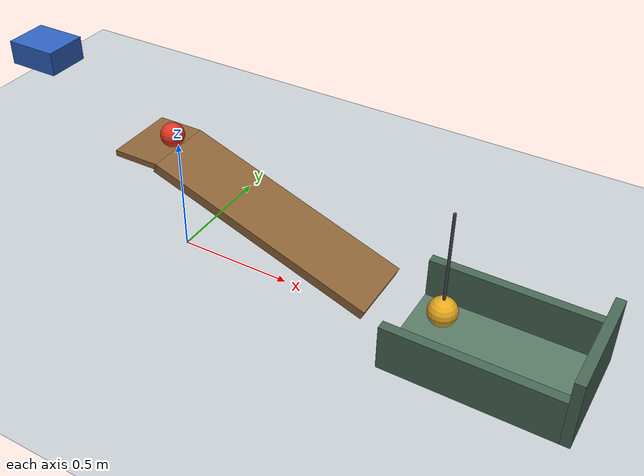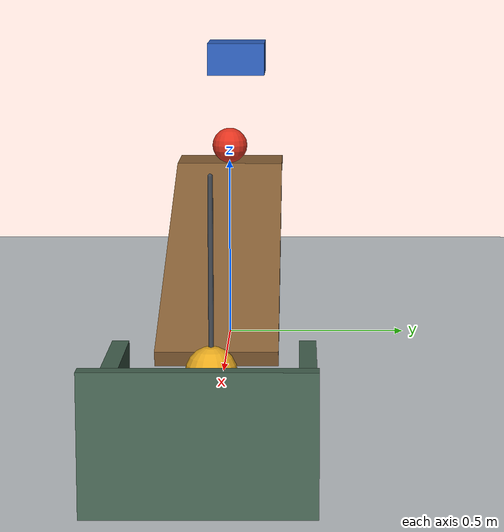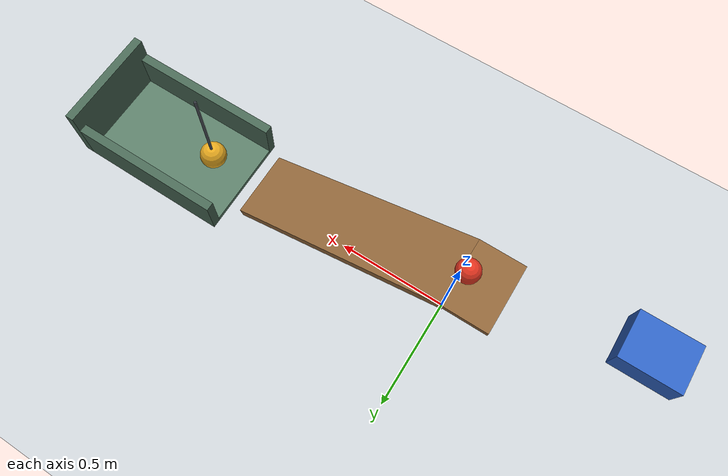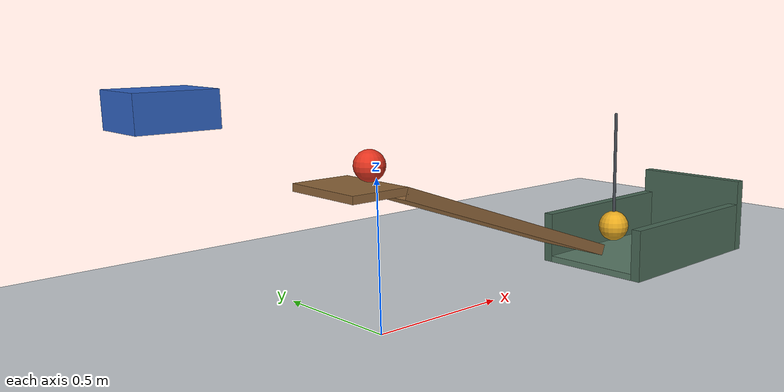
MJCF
<mujoco model="spring_cart_ramp_pendulum_corrected">
  <compiler angle="degree" autolimits="true"/>
  <option timestep="0.002" gravity="0 0 -9.81" integrator="implicitfast" cone="elliptic" iterations="100" tolerance="1e-10"/>
  <statistic center="0.55 0 0.35" extent="2.2"/>

  <!-- MuJoCo has no direct restitution attribute; this contact damping ratio targets restitution 0.05. -->
  <!-- Sliding friction is 0.68 throughout. The receiving surfaces additionally provide rolling resistance. -->
  <!-- All generalized velocities are zero in the start keyframe. -->

  <worldbody>
    <light name="main_light" pos="0.3 -1.5 2.5" dir="0.2 0.4 -1" diffuse="0.85 0.85 0.85"/>
    <geom name="floor" type="plane" pos="0 0 0" size="3 2 0.1" friction="0.68 0.005 0.01" condim="6" solref="0.010 0.6901" solimp="0.95 0.95 0.001" rgba="0.78 0.80 0.82 1"/>

    <!-- The inclined top surface is exactly 1.00 m long and 0.30 m wide at 20 degrees. -->
    <!-- Its high edge is at z=0.492020143326 and its low edge is at z=0.15. -->
    <body name="ramp1" pos="0 0 0.492020143326" quat="0.984807753012 0 0.173648177667 0">
      <geom name="ramp1_surface" type="box" pos="0.5 0 -0.02" size="0.5 0.15 0.02" friction="0.68 0.005 0.0001" condim="6" solref="0.010 0.6901" solimp="0.95 0.95 0.001" rgba="0.55 0.39 0.22 1"/>
    </body>

    <!-- A level staging surface keeps ball1 stationary immediately behind the ramp's high edge. -->
    <!-- There is no downstream stopper to wedge the ball against the cart. -->
    <body name="launch_platform" pos="-0.10 0 0.479520143326">
      <geom name="launch_platform_surface" type="box" size="0.10 0.15 0.0125" friction="0.68 0.005 0.0001" condim="6" solref="0.010 0.6901" solimp="0.95 0.95 0.001" rgba="0.55 0.39 0.22 1"/>
    </body>

    <!-- The upright cart slides downhill at 20 degrees; gravity assists its compressed axial spring. -->
    <!-- At q=0.50 its front face reaches the stationary ball. Its bottom remains clear of the platform. -->
    <body name="cart1" pos="-0.654846310393 0 0.753030214989">
      <joint name="cart1_slide" type="slide" axis="0.939692620786 0 -0.342020143326" damping="0.20" stiffness="18" springref="0.20" limited="true" range="0 0.56" solreflimit="0.010 0.6901" solimplimit="0.95 0.95 0.001"/>
      <geom name="cart1_box" type="box" size="0.11 0.09 0.05" mass="0.50" friction="0.68 0.005 0.0001" condim="6" solref="0.010 0.6901" solimp="0.95 0.95 0.001" rgba="0.18 0.38 0.75 1"/>
    </body>

    <body name="ball1" pos="-0.025 0 0.542020143326">
      <freejoint name="ball1_free"/>
      <geom name="ball1_sphere" type="sphere" size="0.05" mass="0.20" friction="0.68 0.005 0.0001" condim="6" solref="0.010 0.6901" solimp="0.95 0.95 0.001" rgba="0.88 0.20 0.12 1"/>
    </body>

    <!-- The bob hangs beyond the gap, approximately in the ball's departing flight path. -->
    <body name="pendulum1" pos="1.189692620786 0 0.61">
      <joint name="pendulum1_hinge" type="hinge" axis="0 1 0" damping="0.04" limited="true" range="-75 75" solreflimit="0.010 0.6901" solimplimit="0.95 0.95 0.001"/>
      <geom name="pendulum1_rod" type="capsule" fromto="0 0 0 0 0 -0.39" size="0.006" mass="0.015" friction="0.68 0.005 0.0001" condim="6" solref="0.010 0.6901" solimp="0.95 0.95 0.001" rgba="0.25 0.27 0.30 1"/>
      <geom name="pendulum1_bob" type="sphere" pos="0 0 -0.45" size="0.06" mass="0.20" friction="0.68 0.005 0.0001" condim="6" solref="0.010 0.6901" solimp="0.95 0.95 0.001" rgba="0.90 0.66 0.12 1"/>
    </body>

    <!-- Ramp low edge x=0.939692620786; receiving deck begins at x=1.039692620786. -->
    <!-- The horizontal gap is exactly 0.10 m. -->
    <body name="catch_deck" pos="0 0 0">
      <geom name="catch_deck_surface" type="box" pos="1.389692620786 0 0.0125" size="0.35 0.20 0.0125" friction="0.68 0.005 0.01" condim="6" solref="0.010 0.6901" solimp="0.95 0.95 0.001" rgba="0.35 0.48 0.40 1"/>
      <geom name="catch_deck_end_wall" type="box" pos="1.759692620786 0 0.15" size="0.02 0.24 0.15" friction="0.68 0.005 0.01" condim="6" solref="0.010 0.6901" solimp="0.95 0.95 0.001" rgba="0.28 0.40 0.33 1"/>
      <geom name="catch_deck_left_wall" type="box" pos="1.389692620786 0.22 0.10" size="0.35 0.02 0.10" friction="0.68 0.005 0.01" condim="6" solref="0.010 0.6901" solimp="0.95 0.95 0.001" rgba="0.28 0.40 0.33 1"/>
      <geom name="catch_deck_right_wall" type="box" pos="1.389692620786 -0.22 0.10" size="0.35 0.02 0.10" friction="0.68 0.005 0.01" condim="6" solref="0.010 0.6901" solimp="0.95 0.95 0.001" rgba="0.28 0.40 0.33 1"/>
    </body>
  </worldbody>

  <keyframe>
    <key name="start" time="0" qpos="0 -0.025 0 0.542020143326 1 0 0 0 0" qvel="0 0 0 0 0 0 0 0"/>
  </keyframe>
</mujoco>
